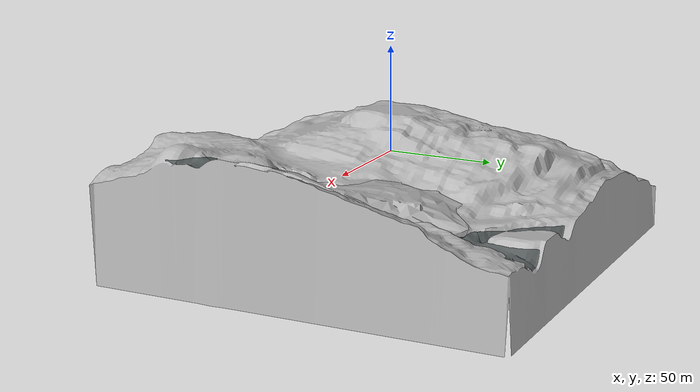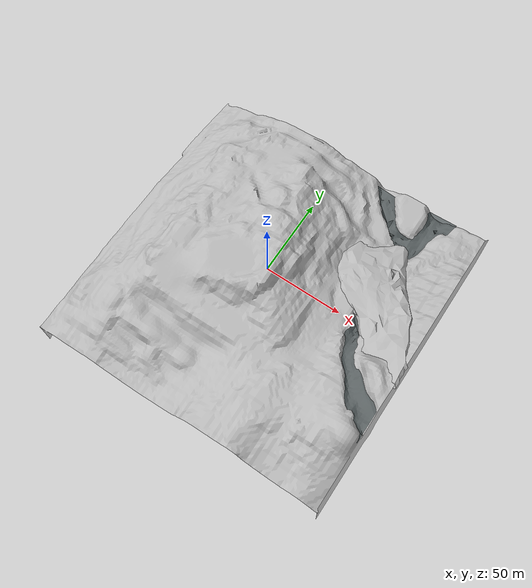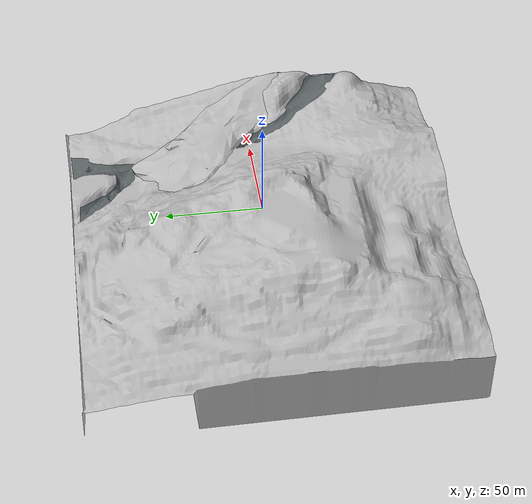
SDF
<?xml version="1.0" ?>
<sdf version="1.4">
  <model name="galtelli_small">
    <static>true</static>

    <link name="galtelli_small">
      <collision name="collision">
	<geometry>
            <mesh>
	      <uri>model://galtelli_small/galtelli_small.dae</uri>
	    </mesh>
          </geometry>
      </collision>
      <visual name="visual">
	<geometry>
            <mesh>
	      <uri>model://galtelli_small/galtelli_small.dae</uri>
	    </mesh>
          </geometry>
        <material>
          <script>
            <uri>file://materials/scripts/iai-rescue-galtelli.material</uri>
	     <name>IAI/GaltelliSmall</name>
          </script>
        </material>
      </visual>
    </link>

    <include>
      <uri>model://galtelli_small_river</uri>
    </include>
    <include>
      <uri>model://galtelli_small_avalanche</uri>
    </include>

  </model>
</sdf>

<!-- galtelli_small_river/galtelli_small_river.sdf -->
<sdf version="1.4">
  <model name="river">
    <static>true</static>

    <link name="river">
      <collision name="collision">
	<geometry>
            <mesh>
	      <uri>model://galtelli_small_river/galtelli_small_river.dae</uri>
	    </mesh>
          </geometry>
      </collision>
      <visual name="visual">
        <cast_shadows>false</cast_shadows>
         <transparency>0.5</transparency>

	<geometry>
            <mesh>
	      <uri>model://galtelli_small_river/galtelli_small_river.dae</uri>
	    </mesh>
          </geometry>
        <material>
          <script>
            <uri>file://materials/scripts/iai-rescue-galtelli.material</uri>
	     <name>IAI/River</name>
          </script>
        </material>
      </visual>
    </link>

  </model>
</sdf>

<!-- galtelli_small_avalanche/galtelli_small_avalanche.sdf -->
<sdf version="1.4">
  <model name="galtelli_small_avalanche">
    <static>true</static>

    <link name="galtelli_small_avalanche">
      <collision name="collision">
	<geometry>
            <mesh>
	      <uri>model://galtelli_small_avalanche/galtelli_small_avalanche.dae</uri>
	    </mesh>
          </geometry>
      </collision>
      <visual name="visual">
	<geometry>
            <mesh>
	      <uri>model://galtelli_small_avalanche/galtelli_small_avalanche.dae</uri>
	    </mesh>
          </geometry>
        <material>
          <script>
            <uri>file://materials/scripts/iai-rescue-galtelli.material</uri>
	     <name>IAI/GaltelliSmallAvalanche</name>
          </script>
        </material>
      </visual>
    </link>

  </model>
</sdf>
